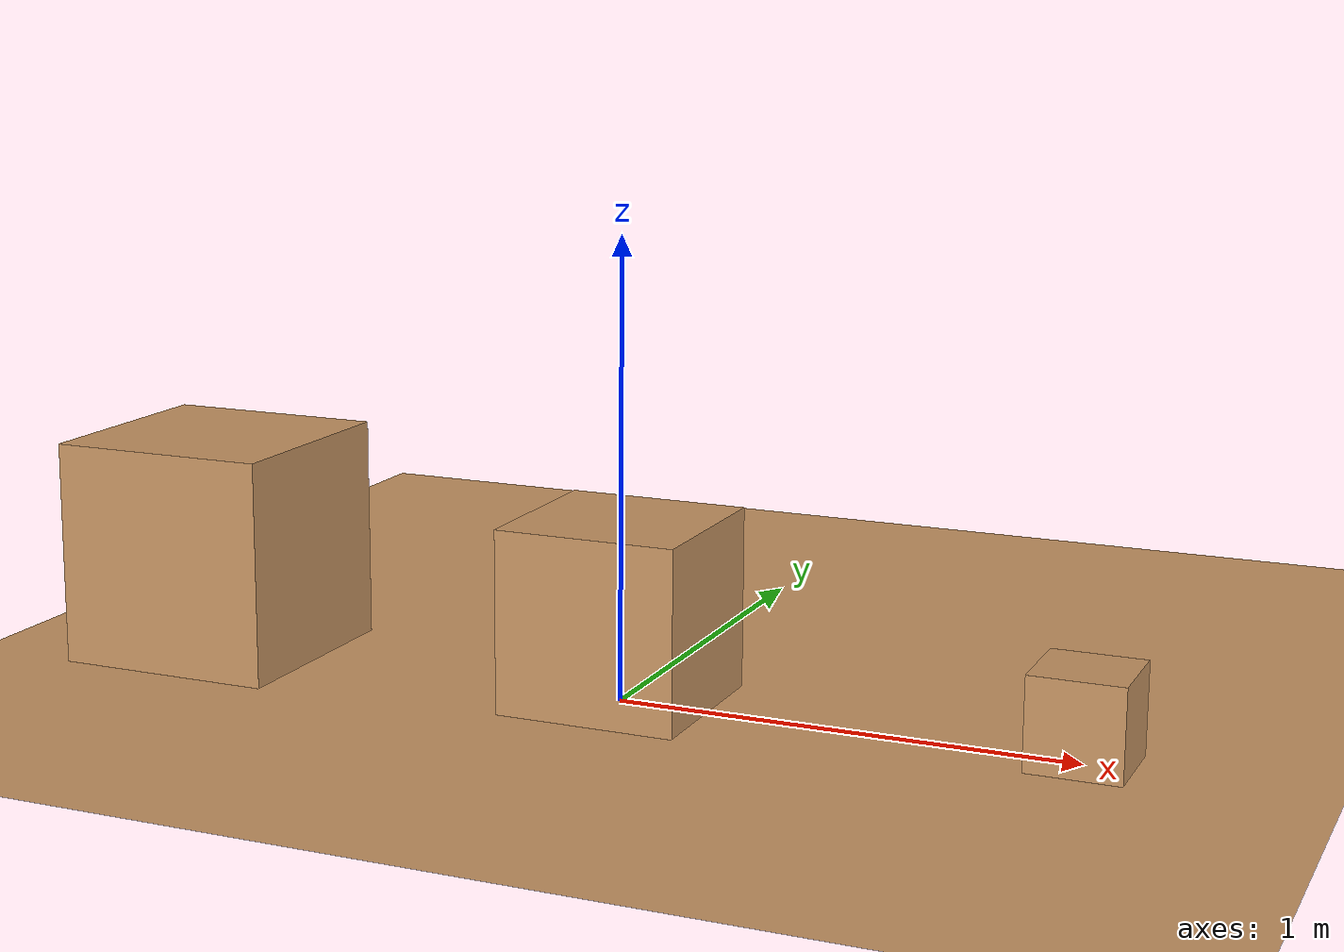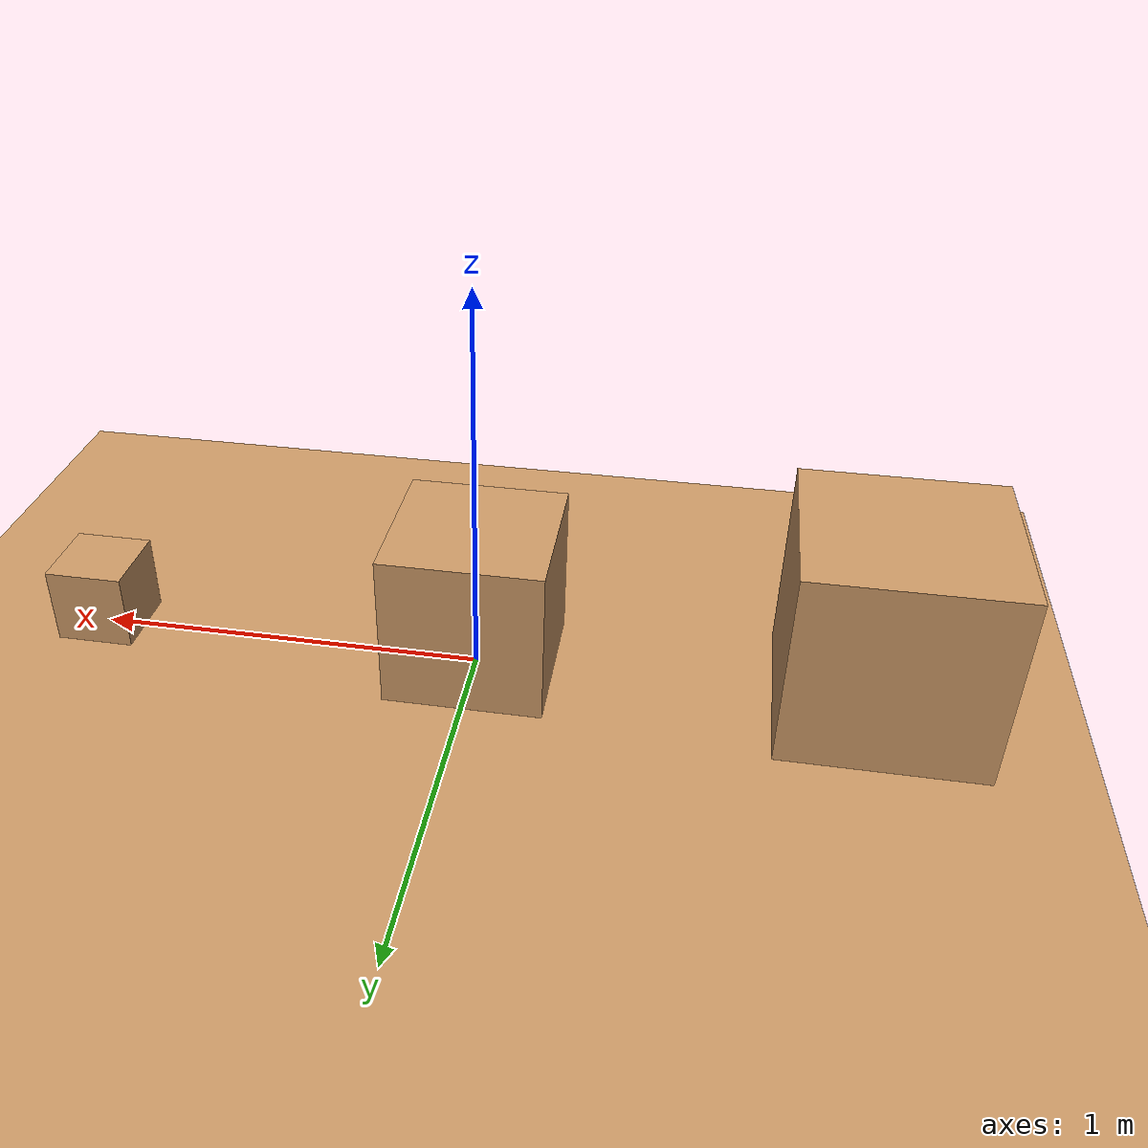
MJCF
<!-- Author: vikash@openai.com-->
<mujoco model='tosser-v1.5'>
    <compiler inertiafromgeom='auto' angle='radian'/>

    <default>
        <joint limited='true' damping='1' armature='0'/>
        <geom contype='1' conaffinity='1' condim='3' rgba='0.8 0.6 .4 1'
        	margin="0.001" solref=".02 1" solimp=".8 .8 .01" material="geom"/>
        <motor ctrlrange='-1 1'  ctrllimited='true'/>
    </default>

    <option timestep='0.02' iterations="50" solver="PGS">
        <flag energy="enable"/>
    </option>

    <visual>
        <map fogstart="3" fogend="5" force="0.1" znear="0.1"/>
        <quality shadowsize="2048"/>
        <global offwidth="800" offheight="800"/>
    </visual>

    <asset>
		<texture type="skybox" builtin="gradient" width="128" height="128" rgb1=".4 .6 .8"
            rgb2="0 0 0"/>
        <texture name="texgeom" type="cube" builtin="flat" mark="cross" width="127" height="1278"
            rgb1="0.8 0.6 0.4" rgb2="0.8 0.6 0.4" markrgb="1 1 1" random="0.01"/>
        <texture name="texplane" type="2d" builtin="checker" rgb1=".2 .3 .4" rgb2=".1 0.15 0.2"
            width="512" height="512"/>

        <material name='MatPlane' reflectance='0.5' texture="texplane" texrepeat="1 1" texuniform="true"/>
        <material name='geom' texture="texgeom" texuniform="true"/>
    </asset>

    <worldbody>
        <light directional='false' diffuse='.8 .8 .8' specular='0.3 0.3 0.3' pos='0 0 4.0' dir='0 -.15 -1'/>

		<geom name='floor' pos='0 -1 0' size='1.5 3 .125' type='plane' material="MatPlane" condim='3'/>

		<body name='obj' pos='-1 0 0.2501'>
			<geom name='obj' type='box' size='.25 .25 .25'/>
			<joint name='ballz' type='slide' axis='0 0 1' limited='false' damping='.01'/>
			<joint name='bally' type='slide' axis='0 1 0' limited='false' damping='.01'/>
			<joint name='ballx' type='slide' axis='1 0 0' limited='false' damping='.01'/>
		</body>

		<body name='obj1' pos='0 0 0.201'>
			<geom name='obj1' type='box' size='.2 .2 .2'/>
			<joint name='ballz1' type='slide' axis='0 0 1' limited='false' damping='.01'/>
			<joint name='bally1' type='slide' axis='0 1 0' limited='false' damping='.01'/>
			<joint name='ballx1' type='slide' axis='1 0 0' limited='false' damping='.01'/>
		</body>

		<body name='obj2' pos='1 0 0.101'>
			<geom name='obj2' type='box' size='.1 .1 .1'/>
			<joint name='ballz2' type='slide' axis='0 0 1' limited='false' damping='.01'/>
			<joint name='bally2' type='slide' axis='0 1 0' limited='false' damping='.01'/>
			<joint name='ballx2' type='slide' axis='1 0 0' limited='false' damping='.01'/>
		</body>

	</worldbody>

    <actuator>
		<general name='a1' 	gear='1 0 0 0 0 0' joint='ballz'/>
		<general name='a2' 	gear='1 0 0 0 0 0' joint='ballz1'/>
		<general name='a3' 	gear='1 0 0 0 0 0' joint='ballz2'/>
    </actuator>

</mujoco>
